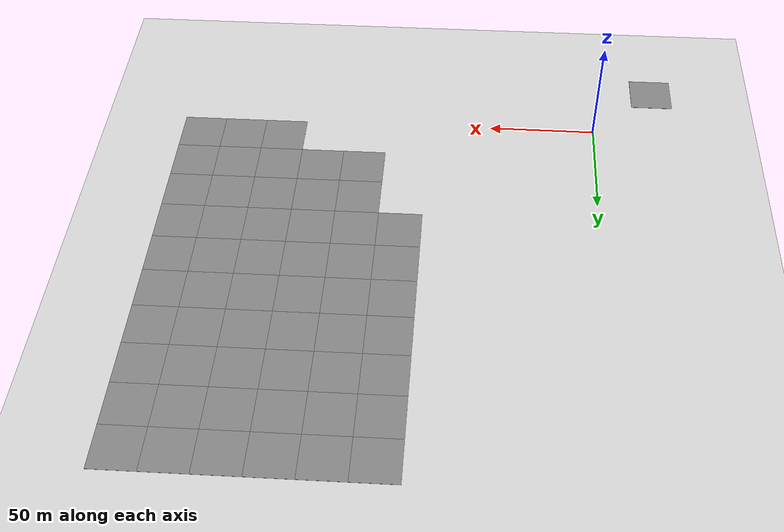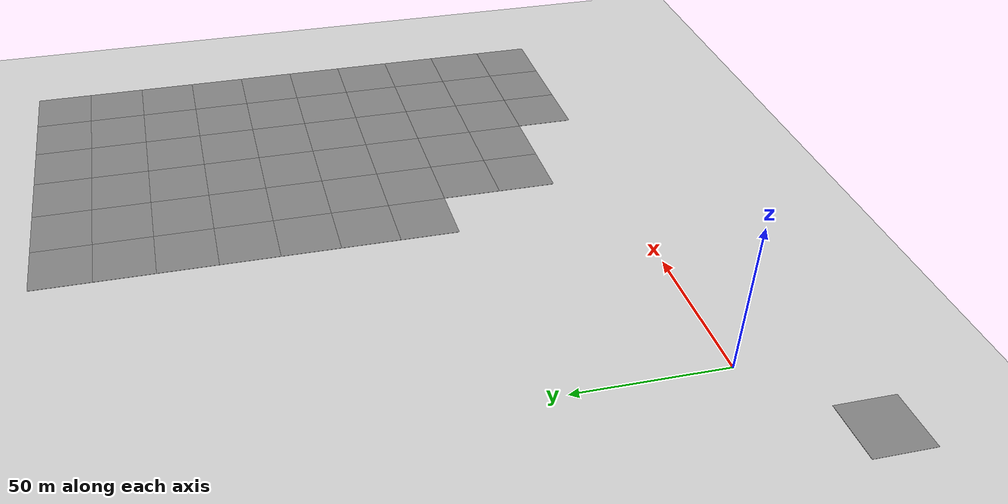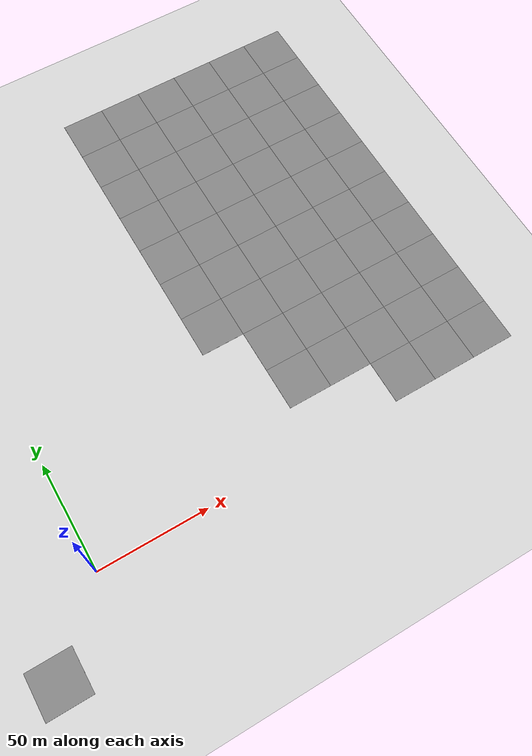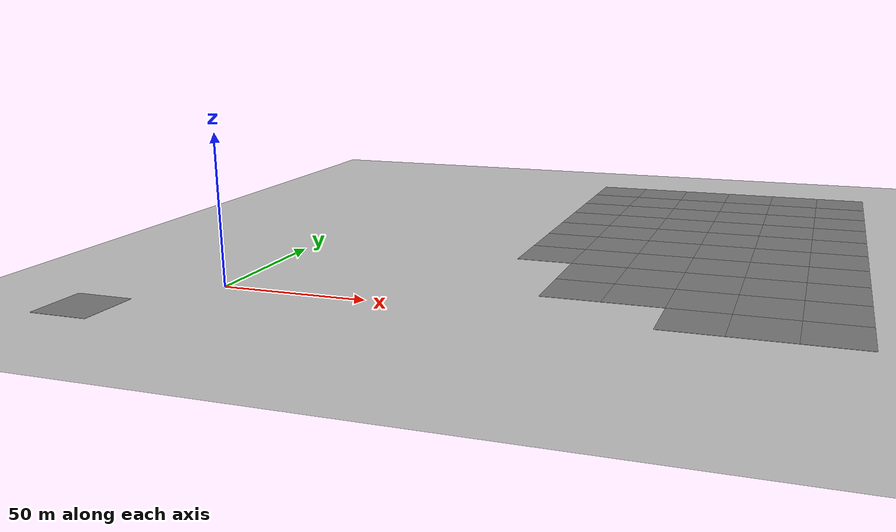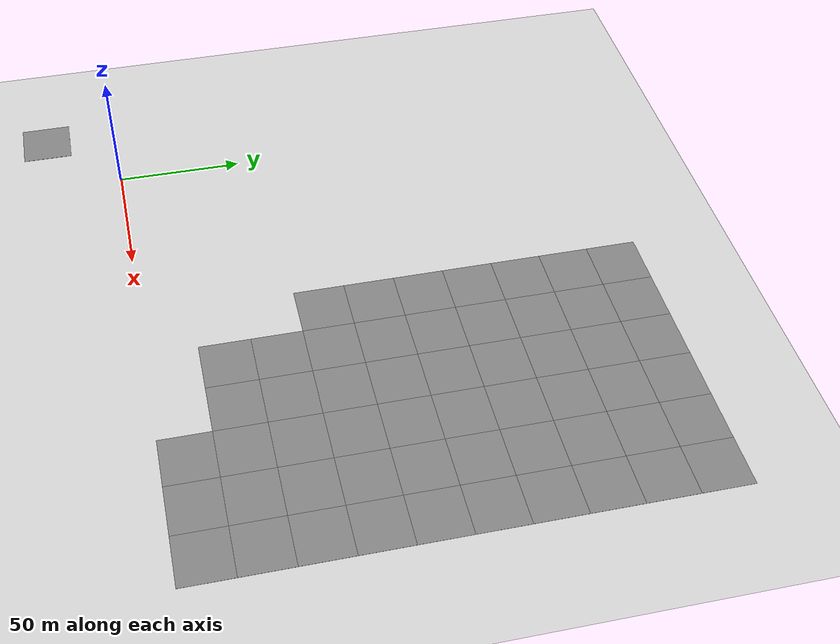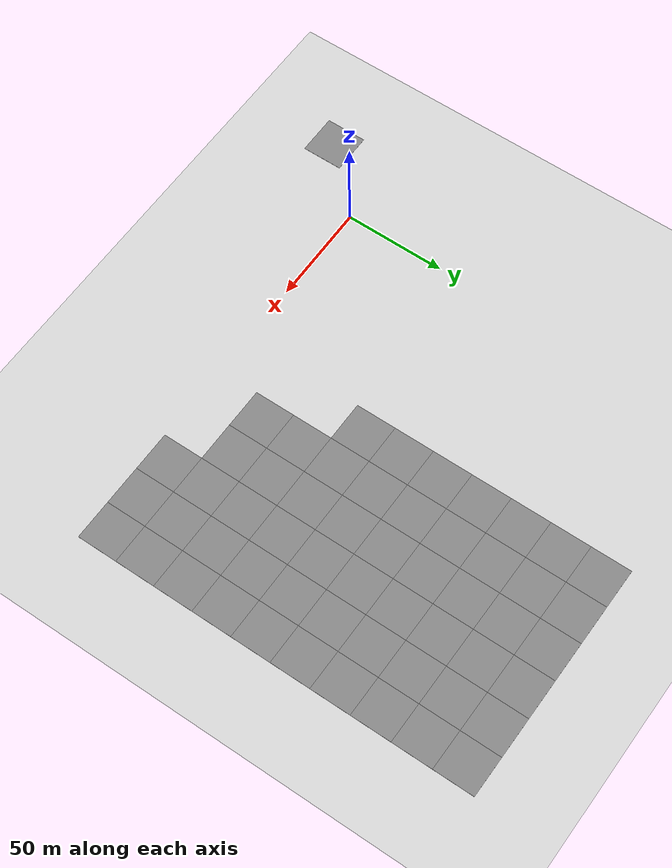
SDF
<sdf version="1.9">
 <world name="test_city_4">
  <model name="ground_plane">
   <static>true</static>
   <link name="link">
    <collision name="collision">
     <geometry><plane><normal>0 0 1</normal><size>500 500</size></plane></geometry>
    </collision>
    <visual name="visual">
     <geometry><plane><normal>0 0 1</normal><size>500 500</size></plane></geometry>
     <material>
      <ambient>0.8 0.8 0.8 1</ambient>
      <diffuse>0.8 0.8 0.8 1</diffuse>
      <specular>0.8 0.8 0.8 1</specular>
     </material>
    </visual>
   </link>
  </model>
  <model name="asphalt_plane">
   <static>1</static>
   <link name="link">
    <collision name="collision"><geometry><box><size>20 20 0.1</size></box></geometry></collision>
    <visual name="visual">
     <cast_shadows>0</cast_shadows>
     <geometry><box><size>20 20 0.1</size></box></geometry>
     <material>
      <ambient>0.5 0.5 0.5 1</ambient>
      <diffuse>0.5 0.5 0.5 1</diffuse>
      <specular>0.2 0.2 0.2 1</specular>
      <pbr><metal><albedo_map>model://asphalt_plane/materials/textures/tarmac.png</albedo_map></metal></pbr>
     </material>
    </visual>
   </link>
   <pose>-30 -30 0 0 0 0</pose>
  </model>
  <model name="asphalt_plane_77">
   <static>1</static>
   <link name="link">
    <collision name="collision"><geometry><box><size>20 20 0.1</size></box></geometry></collision>
    <visual name="visual">
     <cast_shadows>0</cast_shadows>
     <geometry><box><size>20 20 0.1</size></box></geometry>
     <material>
      <ambient>0.5 0.5 0.5 1</ambient>
      <diffuse>0.5 0.5 0.5 1</diffuse>
      <specular>0.2 0.2 0.2 1</specular>
      <pbr><metal><albedo_map>model://asphalt_plane/materials/textures/tarmac.png</albedo_map></metal></pbr>
     </material>
    </visual>
   </link>
   <pose>90 70 0 0 0 0</pose>
  </model>
  <model name="asphalt_plane_78">
   <static>1</static>
   <link name="link">
    <collision name="collision"><geometry><box><size>20 20 0.1</size></box></geometry></collision>
    <visual name="visual">
     <cast_shadows>0</cast_shadows>
     <geometry><box><size>20 20 0.1</size></box></geometry>
     <material>
      <ambient>0.5 0.5 0.5 1</ambient>
      <diffuse>0.5 0.5 0.5 1</diffuse>
      <specular>0.2 0.2 0.2 1</specular>
      <pbr><metal><albedo_map>model://asphalt_plane/materials/textures/tarmac.png</albedo_map></metal></pbr>
     </material>
    </visual>
   </link>
   <pose>90 90 0 0 0 0</pose>
  </model>
  <model name="asphalt_plane_79">
   <static>1</static>
   <link name="link">
    <collision name="collision"><geometry><box><size>20 20 0.1</size></box></geometry></collision>
    <visual name="visual">
     <cast_shadows>0</cast_shadows>
     <geometry><box><size>20 20 0.1</size></box></geometry>
     <material>
      <ambient>0.5 0.5 0.5 1</ambient>
      <diffuse>0.5 0.5 0.5 1</diffuse>
      <specular>0.2 0.2 0.2 1</specular>
      <pbr><metal><albedo_map>model://asphalt_plane/materials/textures/tarmac.png</albedo_map></metal></pbr>
     </material>
    </visual>
   </link>
   <pose>90 110 0 0 0 0</pose>
  </model>
  <model name="asphalt_plane_80">
   <static>1</static>
   <link name="link">
    <collision name="collision"><geometry><box><size>20 20 0.1</size></box></geometry></collision>
    <visual name="visual">
     <cast_shadows>0</cast_shadows>
     <geometry><box><size>20 20 0.1</size></box></geometry>
     <material>
      <ambient>0.5 0.5 0.5 1</ambient>
      <diffuse>0.5 0.5 0.5 1</diffuse>
      <specular>0.2 0.2 0.2 1</specular>
      <pbr><metal><albedo_map>model://asphalt_plane/materials/textures/tarmac.png</albedo_map></metal></pbr>
     </material>
    </visual>
   </link>
   <pose>90 130 0 0 0 0</pose>
  </model>
  <model name="asphalt_plane_81">
   <static>1</static>
   <link name="link">
    <collision name="collision"><geometry><box><size>20 20 0.1</size></box></geometry></collision>
    <visual name="visual">
     <cast_shadows>0</cast_shadows>
     <geometry><box><size>20 20 0.1</size></box></geometry>
     <material>
      <ambient>0.5 0.5 0.5 1</ambient>
      <diffuse>0.5 0.5 0.5 1</diffuse>
      <specular>0.2 0.2 0.2 1</specular>
      <pbr><metal><albedo_map>model://asphalt_plane/materials/textures/tarmac.png</albedo_map></metal></pbr>
     </material>
    </visual>
   </link>
   <pose>90 150 0 0 0 0</pose>
  </model>
  <model name="asphalt_plane_82">
   <static>1</static>
   <link name="link">
    <collision name="collision"><geometry><box><size>20 20 0.1</size></box></geometry></collision>
    <visual name="visual">
     <cast_shadows>0</cast_shadows>
     <geometry><box><size>20 20 0.1</size></box></geometry>
     <material>
      <ambient>0.5 0.5 0.5 1</ambient>
      <diffuse>0.5 0.5 0.5 1</diffuse>
      <specular>0.2 0.2 0.2 1</specular>
      <pbr><metal><albedo_map>model://asphalt_plane/materials/textures/tarmac.png</albedo_map></metal></pbr>
     </material>
    </visual>
   </link>
   <pose>90 170 0 0 0 0</pose>
  </model>
  <model name="asphalt_plane_83">
   <static>1</static>
   <link name="link">
    <collision name="collision"><geometry><box><size>20 20 0.1</size></box></geometry></collision>
    <visual name="visual">
     <cast_shadows>0</cast_shadows>
     <geometry><box><size>20 20 0.1</size></box></geometry>
     <material>
      <ambient>0.5 0.5 0.5 1</ambient>
      <diffuse>0.5 0.5 0.5 1</diffuse>
      <specular>0.2 0.2 0.2 1</specular>
      <pbr><metal><albedo_map>model://asphalt_plane/materials/textures/tarmac.png</albedo_map></metal></pbr>
     </material>
    </visual>
   </link>
   <pose>90 190 0 0 0 0</pose>
  </model>
  <model name="asphalt_plane_87">
   <static>1</static>
   <link name="link">
    <collision name="collision"><geometry><box><size>20 20 0.1</size></box></geometry></collision>
    <visual name="visual">
     <cast_shadows>0</cast_shadows>
     <geometry><box><size>20 20 0.1</size></box></geometry>
     <material>
      <ambient>0.5 0.5 0.5 1</ambient>
      <diffuse>0.5 0.5 0.5 1</diffuse>
      <specular>0.2 0.2 0.2 1</specular>
      <pbr><metal><albedo_map>model://asphalt_plane/materials/textures/tarmac.png</albedo_map></metal></pbr>
     </material>
    </visual>
   </link>
   <pose>110 30 0 0 0 0</pose>
  </model>
  <model name="asphalt_plane_88">
   <static>1</static>
   <link name="link">
    <collision name="collision"><geometry><box><size>20 20 0.1</size></box></geometry></collision>
    <visual name="visual">
     <cast_shadows>0</cast_shadows>
     <geometry><box><size>20 20 0.1</size></box></geometry>
     <material>
      <ambient>0.5 0.5 0.5 1</ambient>
      <diffuse>0.5 0.5 0.5 1</diffuse>
      <specular>0.2 0.2 0.2 1</specular>
      <pbr><metal><albedo_map>model://asphalt_plane/materials/textures/tarmac.png</albedo_map></metal></pbr>
     </material>
    </visual>
   </link>
   <pose>110 50 0 0 0 0</pose>
  </model>
  <model name="asphalt_plane_89">
   <static>1</static>
   <link name="link">
    <collision name="collision"><geometry><box><size>20 20 0.1</size></box></geometry></collision>
    <visual name="visual">
     <cast_shadows>0</cast_shadows>
     <geometry><box><size>20 20 0.1</size></box></geometry>
     <material>
      <ambient>0.5 0.5 0.5 1</ambient>
      <diffuse>0.5 0.5 0.5 1</diffuse>
      <specular>0.2 0.2 0.2 1</specular>
      <pbr><metal><albedo_map>model://asphalt_plane/materials/textures/tarmac.png</albedo_map></metal></pbr>
     </material>
    </visual>
   </link>
   <pose>110 70 0 0 0 0</pose>
  </model>
  <model name="asphalt_plane_90">
   <static>1</static>
   <link name="link">
    <collision name="collision"><geometry><box><size>20 20 0.1</size></box></geometry></collision>
    <visual name="visual">
     <cast_shadows>0</cast_shadows>
     <geometry><box><size>20 20 0.1</size></box></geometry>
     <material>
      <ambient>0.5 0.5 0.5 1</ambient>
      <diffuse>0.5 0.5 0.5 1</diffuse>
      <specular>0.2 0.2 0.2 1</specular>
      <pbr><metal><albedo_map>model://asphalt_plane/materials/textures/tarmac.png</albedo_map></metal></pbr>
     </material>
    </visual>
   </link>
   <pose>110 90 0 0 0 0</pose>
  </model>
  <model name="asphalt_plane_91">
   <static>1</static>
   <link name="link">
    <collision name="collision"><geometry><box><size>20 20 0.1</size></box></geometry></collision>
    <visual name="visual">
     <cast_shadows>0</cast_shadows>
     <geometry><box><size>20 20 0.1</size></box></geometry>
     <material>
      <ambient>0.5 0.5 0.5 1</ambient>
      <diffuse>0.5 0.5 0.5 1</diffuse>
      <specular>0.2 0.2 0.2 1</specular>
      <pbr><metal><albedo_map>model://asphalt_plane/materials/textures/tarmac.png</albedo_map></metal></pbr>
     </material>
    </visual>
   </link>
   <pose>110 110 0 0 0 0</pose>
  </model>
  <model name="asphalt_plane_92">
   <static>1</static>
   <link name="link">
    <collision name="collision"><geometry><box><size>20 20 0.1</size></box></geometry></collision>
    <visual name="visual">
     <cast_shadows>0</cast_shadows>
     <geometry><box><size>20 20 0.1</size></box></geometry>
     <material>
      <ambient>0.5 0.5 0.5 1</ambient>
      <diffuse>0.5 0.5 0.5 1</diffuse>
      <specular>0.2 0.2 0.2 1</specular>
      <pbr><metal><albedo_map>model://asphalt_plane/materials/textures/tarmac.png</albedo_map></metal></pbr>
     </material>
    </visual>
   </link>
   <pose>110 130 0 0 0 0</pose>
  </model>
  <model name="asphalt_plane_93">
   <static>1</static>
   <link name="link">
    <collision name="collision"><geometry><box><size>20 20 0.1</size></box></geometry></collision>
    <visual name="visual">
     <cast_shadows>0</cast_shadows>
     <geometry><box><size>20 20 0.1</size></box></geometry>
     <material>
      <ambient>0.5 0.5 0.5 1</ambient>
      <diffuse>0.5 0.5 0.5 1</diffuse>
      <specular>0.2 0.2 0.2 1</specular>
      <pbr><metal><albedo_map>model://asphalt_plane/materials/textures/tarmac.png</albedo_map></metal></pbr>
     </material>
    </visual>
   </link>
   <pose>110 150 0 0 0 0</pose>
  </model>
  <model name="asphalt_plane_94">
   <static>1</static>
   <link name="link">
    <collision name="collision"><geometry><box><size>20 20 0.1</size></box></geometry></collision>
    <visual name="visual">
     <cast_shadows>0</cast_shadows>
     <geometry><box><size>20 20 0.1</size></box></geometry>
     <material>
      <ambient>0.5 0.5 0.5 1</ambient>
      <diffuse>0.5 0.5 0.5 1</diffuse>
      <specular>0.2 0.2 0.2 1</specular>
      <pbr><metal><albedo_map>model://asphalt_plane/materials/textures/tarmac.png</albedo_map></metal></pbr>
     </material>
    </visual>
   </link>
   <pose>110 170 0 0 0 0</pose>
  </model>
  <model name="asphalt_plane_95">
   <static>1</static>
   <link name="link">
    <collision name="collision"><geometry><box><size>20 20 0.1</size></box></geometry></collision>
    <visual name="visual">
     <cast_shadows>0</cast_shadows>
     <geometry><box><size>20 20 0.1</size></box></geometry>
     <material>
      <ambient>0.5 0.5 0.5 1</ambient>
      <diffuse>0.5 0.5 0.5 1</diffuse>
      <specular>0.2 0.2 0.2 1</specular>
      <pbr><metal><albedo_map>model://asphalt_plane/materials/textures/tarmac.png</albedo_map></metal></pbr>
     </material>
    </visual>
   </link>
   <pose>110 190 0 0 0 0</pose>
  </model>
  <model name="asphalt_plane_99">
   <static>1</static>
   <link name="link">
    <collision name="collision"><geometry><box><size>20 20 0.1</size></box></geometry></collision>
    <visual name="visual">
     <cast_shadows>0</cast_shadows>
     <geometry><box><size>20 20 0.1</size></box></geometry>
     <material>
      <ambient>0.5 0.5 0.5 1</ambient>
      <diffuse>0.5 0.5 0.5 1</diffuse>
      <specular>0.2 0.2 0.2 1</specular>
      <pbr><metal><albedo_map>model://asphalt_plane/materials/textures/tarmac.png</albedo_map></metal></pbr>
     </material>
    </visual>
   </link>
   <pose>130 30 0 0 0 0</pose>
  </model>
  <model name="asphalt_plane_100">
   <static>1</static>
   <link name="link">
    <collision name="collision"><geometry><box><size>20 20 0.1</size></box></geometry></collision>
    <visual name="visual">
     <cast_shadows>0</cast_shadows>
     <geometry><box><size>20 20 0.1</size></box></geometry>
     <material>
      <ambient>0.5 0.5 0.5 1</ambient>
      <diffuse>0.5 0.5 0.5 1</diffuse>
      <specular>0.2 0.2 0.2 1</specular>
      <pbr><metal><albedo_map>model://asphalt_plane/materials/textures/tarmac.png</albedo_map></metal></pbr>
     </material>
    </visual>
   </link>
   <pose>130 50 0 0 0 0</pose>
  </model>
  <model name="asphalt_plane_101">
   <static>1</static>
   <link name="link">
    <collision name="collision"><geometry><box><size>20 20 0.1</size></box></geometry></collision>
    <visual name="visual">
     <cast_shadows>0</cast_shadows>
     <geometry><box><size>20 20 0.1</size></box></geometry>
     <material>
      <ambient>0.5 0.5 0.5 1</ambient>
      <diffuse>0.5 0.5 0.5 1</diffuse>
      <specular>0.2 0.2 0.2 1</specular>
      <pbr><metal><albedo_map>model://asphalt_plane/materials/textures/tarmac.png</albedo_map></metal></pbr>
     </material>
    </visual>
   </link>
   <pose>130 70 0 0 0 0</pose>
  </model>
  <model name="asphalt_plane_102">
   <static>1</static>
   <link name="link">
    <collision name="collision"><geometry><box><size>20 20 0.1</size></box></geometry></collision>
    <visual name="visual">
     <cast_shadows>0</cast_shadows>
     <geometry><box><size>20 20 0.1</size></box></geometry>
     <material>
      <ambient>0.5 0.5 0.5 1</ambient>
      <diffuse>0.5 0.5 0.5 1</diffuse>
      <specular>0.2 0.2 0.2 1</specular>
      <pbr><metal><albedo_map>model://asphalt_plane/materials/textures/tarmac.png</albedo_map></metal></pbr>
     </material>
    </visual>
   </link>
   <pose>130 90 0 0 0 0</pose>
  </model>
  <model name="asphalt_plane_103">
   <static>1</static>
   <link name="link">
    <collision name="collision"><geometry><box><size>20 20 0.1</size></box></geometry></collision>
    <visual name="visual">
     <cast_shadows>0</cast_shadows>
     <geometry><box><size>20 20 0.1</size></box></geometry>
     <material>
      <ambient>0.5 0.5 0.5 1</ambient>
      <diffuse>0.5 0.5 0.5 1</diffuse>
      <specular>0.2 0.2 0.2 1</specular>
      <pbr><metal><albedo_map>model://asphalt_plane/materials/textures/tarmac.png</albedo_map></metal></pbr>
     </material>
    </visual>
   </link>
   <pose>130 110 0 0 0 0</pose>
  </model>
  <model name="asphalt_plane_104">
   <static>1</static>
   <link name="link">
    <collision name="collision"><geometry><box><size>20 20 0.1</size></box></geometry></collision>
    <visual name="visual">
     <cast_shadows>0</cast_shadows>
     <geometry><box><size>20 20 0.1</size></box></geometry>
     <material>
      <ambient>0.5 0.5 0.5 1</ambient>
      <diffuse>0.5 0.5 0.5 1</diffuse>
      <specular>0.2 0.2 0.2 1</specular>
      <pbr><metal><albedo_map>model://asphalt_plane/materials/textures/tarmac.png</albedo_map></metal></pbr>
     </material>
    </visual>
   </link>
   <pose>130 130 0 0 0 0</pose>
  </model>
  <model name="asphalt_plane_105">
   <static>1</static>
   <link name="link">
    <collision name="collision"><geometry><box><size>20 20 0.1</size></box></geometry></collision>
    <visual name="visual">
     <cast_shadows>0</cast_shadows>
     <geometry><box><size>20 20 0.1</size></box></geometry>
     <material>
      <ambient>0.5 0.5 0.5 1</ambient>
      <diffuse>0.5 0.5 0.5 1</diffuse>
      <specular>0.2 0.2 0.2 1</specular>
      <pbr><metal><albedo_map>model://asphalt_plane/materials/textures/tarmac.png</albedo_map></metal></pbr>
     </material>
    </visual>
   </link>
   <pose>130 150 0 0 0 0</pose>
  </model>
  <model name="asphalt_plane_106">
   <static>1</static>
   <link name="link">
    <collision name="collision"><geometry><box><size>20 20 0.1</size></box></geometry></collision>
    <visual name="visual">
     <cast_shadows>0</cast_shadows>
     <geometry><box><size>20 20 0.1</size></box></geometry>
     <material>
      <ambient>0.5 0.5 0.5 1</ambient>
      <diffuse>0.5 0.5 0.5 1</diffuse>
      <specular>0.2 0.2 0.2 1</specular>
      <pbr><metal><albedo_map>model://asphalt_plane/materials/textures/tarmac.png</albedo_map></metal></pbr>
     </material>
    </visual>
   </link>
   <pose>130 170 0 0 0 0</pose>
  </model>
  <model name="asphalt_plane_107">
   <static>1</static>
   <link name="link">
    <collision name="collision"><geometry><box><size>20 20 0.1</size></box></geometry></collision>
    <visual name="visual">
     <cast_shadows>0</cast_shadows>
     <geometry><box><size>20 20 0.1</size></box></geometry>
     <material>
      <ambient>0.5 0.5 0.5 1</ambient>
      <diffuse>0.5 0.5 0.5 1</diffuse>
      <specular>0.2 0.2 0.2 1</specular>
      <pbr><metal><albedo_map>model://asphalt_plane/materials/textures/tarmac.png</albedo_map></metal></pbr>
     </material>
    </visual>
   </link>
   <pose>130 190 0 0 0 0</pose>
  </model>
  <model name="asphalt_plane_110">
   <static>1</static>
   <link name="link">
    <collision name="collision"><geometry><box><size>20 20 0.1</size></box></geometry></collision>
    <visual name="visual">
     <cast_shadows>0</cast_shadows>
     <geometry><box><size>20 20 0.1</size></box></geometry>
     <material>
      <ambient>0.5 0.5 0.5 1</ambient>
      <diffuse>0.5 0.5 0.5 1</diffuse>
      <specular>0.2 0.2 0.2 1</specular>
      <pbr><metal><albedo_map>model://asphalt_plane/materials/textures/tarmac.png</albedo_map></metal></pbr>
     </material>
    </visual>
   </link>
   <pose>150 10 0 0 0 0</pose>
  </model>
  <model name="asphalt_plane_111">
   <static>1</static>
   <link name="link">
    <collision name="collision"><geometry><box><size>20 20 0.1</size></box></geometry></collision>
    <visual name="visual">
     <cast_shadows>0</cast_shadows>
     <geometry><box><size>20 20 0.1</size></box></geometry>
     <material>
      <ambient>0.5 0.5 0.5 1</ambient>
      <diffuse>0.5 0.5 0.5 1</diffuse>
      <specular>0.2 0.2 0.2 1</specular>
      <pbr><metal><albedo_map>model://asphalt_plane/materials/textures/tarmac.png</albedo_map></metal></pbr>
     </material>
    </visual>
   </link>
   <pose>150 30 0 0 0 0</pose>
  </model>
  <model name="asphalt_plane_112">
   <static>1</static>
   <link name="link">
    <collision name="collision"><geometry><box><size>20 20 0.1</size></box></geometry></collision>
    <visual name="visual">
     <cast_shadows>0</cast_shadows>
     <geometry><box><size>20 20 0.1</size></box></geometry>
     <material>
      <ambient>0.5 0.5 0.5 1</ambient>
      <diffuse>0.5 0.5 0.5 1</diffuse>
      <specular>0.2 0.2 0.2 1</specular>
      <pbr><metal><albedo_map>model://asphalt_plane/materials/textures/tarmac.png</albedo_map></metal></pbr>
     </material>
    </visual>
   </link>
   <pose>150 50 0 0 0 0</pose>
  </model>
  <model name="asphalt_plane_113">
   <static>1</static>
   <link name="link">
    <collision name="collision"><geometry><box><size>20 20 0.1</size></box></geometry></collision>
    <visual name="visual">
     <cast_shadows>0</cast_shadows>
     <geometry><box><size>20 20 0.1</size></box></geometry>
     <material>
      <ambient>0.5 0.5 0.5 1</ambient>
      <diffuse>0.5 0.5 0.5 1</diffuse>
      <specular>0.2 0.2 0.2 1</specular>
      <pbr><metal><albedo_map>model://asphalt_plane/materials/textures/tarmac.png</albedo_map></metal></pbr>
     </material>
    </visual>
   </link>
   <pose>150 70 0 0 0 0</pose>
  </model>
  <model name="asphalt_plane_114">
   <static>1</static>
   <link name="link">
    <collision name="collision"><geometry><box><size>20 20 0.1</size></box></geometry></collision>
    <visual name="visual">
     <cast_shadows>0</cast_shadows>
     <geometry><box><size>20 20 0.1</size></box></geometry>
     <material>
      <ambient>0.5 0.5 0.5 1</ambient>
      <diffuse>0.5 0.5 0.5 1</diffuse>
      <specular>0.2 0.2 0.2 1</specular>
      <pbr><metal><albedo_map>model://asphalt_plane/materials/textures/tarmac.png</albedo_map></metal></pbr>
     </material>
    </visual>
   </link>
   <pose>150 90 0 0 0 0</pose>
  </model>
  <model name="asphalt_plane_115">
   <static>1</static>
   <link name="link">
    <collision name="collision"><geometry><box><size>20 20 0.1</size></box></geometry></collision>
    <visual name="visual">
     <cast_shadows>0</cast_shadows>
     <geometry><box><size>20 20 0.1</size></box></geometry>
     <material>
      <ambient>0.5 0.5 0.5 1</ambient>
      <diffuse>0.5 0.5 0.5 1</diffuse>
      <specular>0.2 0.2 0.2 1</specular>
      <pbr><metal><albedo_map>model://asphalt_plane/materials/textures/tarmac.png</albedo_map></metal></pbr>
     </material>
    </visual>
   </link>
   <pose>150 110 0 0 0 0</pose>
  </model>
  <model name="asphalt_plane_116">
   <static>1</static>
   <link name="link">
    <collision name="collision"><geometry><box><size>20 20 0.1</size></box></geometry></collision>
    <visual name="visual">
     <cast_shadows>0</cast_shadows>
     <geometry><box><size>20 20 0.1</size></box></geometry>
     <material>
      <ambient>0.5 0.5 0.5 1</ambient>
      <diffuse>0.5 0.5 0.5 1</diffuse>
      <specular>0.2 0.2 0.2 1</specular>
      <pbr><metal><albedo_map>model://asphalt_plane/materials/textures/tarmac.png</albedo_map></metal></pbr>
     </material>
    </visual>
   </link>
   <pose>150 130 0 0 0 0</pose>
  </model>
  <model name="asphalt_plane_117">
   <static>1</static>
   <link name="link">
    <collision name="collision"><geometry><box><size>20 20 0.1</size></box></geometry></collision>
    <visual name="visual">
     <cast_shadows>0</cast_shadows>
     <geometry><box><size>20 20 0.1</size></box></geometry>
     <material>
      <ambient>0.5 0.5 0.5 1</ambient>
      <diffuse>0.5 0.5 0.5 1</diffuse>
      <specular>0.2 0.2 0.2 1</specular>
      <pbr><metal><albedo_map>model://asphalt_plane/materials/textures/tarmac.png</albedo_map></metal></pbr>
     </material>
    </visual>
   </link>
   <pose>150 150 0 0 0 0</pose>
  </model>
  <model name="asphalt_plane_118">
   <static>1</static>
   <link name="link">
    <collision name="collision"><geometry><box><size>20 20 0.1</size></box></geometry></collision>
    <visual name="visual">
     <cast_shadows>0</cast_shadows>
     <geometry><box><size>20 20 0.1</size></box></geometry>
     <material>
      <ambient>0.5 0.5 0.5 1</ambient>
      <diffuse>0.5 0.5 0.5 1</diffuse>
      <specular>0.2 0.2 0.2 1</specular>
      <pbr><metal><albedo_map>model://asphalt_plane/materials/textures/tarmac.png</albedo_map></metal></pbr>
     </material>
    </visual>
   </link>
   <pose>150 170 0 0 0 0</pose>
  </model>
  <model name="asphalt_plane_119">
   <static>1</static>
   <link name="link">
    <collision name="collision"><geometry><box><size>20 20 0.1</size></box></geometry></collision>
    <visual name="visual">
     <cast_shadows>0</cast_shadows>
     <geometry><box><size>20 20 0.1</size></box></geometry>
     <material>
      <ambient>0.5 0.5 0.5 1</ambient>
      <diffuse>0.5 0.5 0.5 1</diffuse>
      <specular>0.2 0.2 0.2 1</specular>
      <pbr><metal><albedo_map>model://asphalt_plane/materials/textures/tarmac.png</albedo_map></metal></pbr>
     </material>
    </visual>
   </link>
   <pose>150 190 0 0 0 0</pose>
  </model>
  <model name="asphalt_plane_122">
   <static>1</static>
   <link name="link">
    <collision name="collision"><geometry><box><size>20 20 0.1</size></box></geometry></collision>
    <visual name="visual">
     <cast_shadows>0</cast_shadows>
     <geometry><box><size>20 20 0.1</size></box></geometry>
     <material>
      <ambient>0.5 0.5 0.5 1</ambient>
      <diffuse>0.5 0.5 0.5 1</diffuse>
      <specular>0.2 0.2 0.2 1</specular>
      <pbr><metal><albedo_map>model://asphalt_plane/materials/textures/tarmac.png</albedo_map></metal></pbr>
     </material>
    </visual>
   </link>
   <pose>170 10 0 0 0 0</pose>
  </model>
  <model name="asphalt_plane_123">
   <static>1</static>
   <link name="link">
    <collision name="collision"><geometry><box><size>20 20 0.1</size></box></geometry></collision>
    <visual name="visual">
     <cast_shadows>0</cast_shadows>
     <geometry><box><size>20 20 0.1</size></box></geometry>
     <material>
      <ambient>0.5 0.5 0.5 1</ambient>
      <diffuse>0.5 0.5 0.5 1</diffuse>
      <specular>0.2 0.2 0.2 1</specular>
      <pbr><metal><albedo_map>model://asphalt_plane/materials/textures/tarmac.png</albedo_map></metal></pbr>
     </material>
    </visual>
   </link>
   <pose>170 30 0 0 0 0</pose>
  </model>
  <model name="asphalt_plane_124">
   <static>1</static>
   <link name="link">
    <collision name="collision"><geometry><box><size>20 20 0.1</size></box></geometry></collision>
    <visual name="visual">
     <cast_shadows>0</cast_shadows>
     <geometry><box><size>20 20 0.1</size></box></geometry>
     <material>
      <ambient>0.5 0.5 0.5 1</ambient>
      <diffuse>0.5 0.5 0.5 1</diffuse>
      <specular>0.2 0.2 0.2 1</specular>
      <pbr><metal><albedo_map>model://asphalt_plane/materials/textures/tarmac.png</albedo_map></metal></pbr>
     </material>
    </visual>
   </link>
   <pose>170 50 0 0 0 0</pose>
  </model>
  <model name="asphalt_plane_125">
   <static>1</static>
   <link name="link">
    <collision name="collision"><geometry><box><size>20 20 0.1</size></box></geometry></collision>
    <visual name="visual">
     <cast_shadows>0</cast_shadows>
     <geometry><box><size>20 20 0.1</size></box></geometry>
     <material>
      <ambient>0.5 0.5 0.5 1</ambient>
      <diffuse>0.5 0.5 0.5 1</diffuse>
      <specular>0.2 0.2 0.2 1</specular>
      <pbr><metal><albedo_map>model://asphalt_plane/materials/textures/tarmac.png</albedo_map></metal></pbr>
     </material>
    </visual>
   </link>
   <pose>170 70 0 0 0 0</pose>
  </model>
  <model name="asphalt_plane_126">
   <static>1</static>
   <link name="link">
    <collision name="collision"><geometry><box><size>20 20 0.1</size></box></geometry></collision>
    <visual name="visual">
     <cast_shadows>0</cast_shadows>
     <geometry><box><size>20 20 0.1</size></box></geometry>
     <material>
      <ambient>0.5 0.5 0.5 1</ambient>
      <diffuse>0.5 0.5 0.5 1</diffuse>
      <specular>0.2 0.2 0.2 1</specular>
      <pbr><metal><albedo_map>model://asphalt_plane/materials/textures/tarmac.png</albedo_map></metal></pbr>
     </material>
    </visual>
   </link>
   <pose>170 90 0 0 0 0</pose>
  </model>
  <model name="asphalt_plane_127">
   <static>1</static>
   <link name="link">
    <collision name="collision"><geometry><box><size>20 20 0.1</size></box></geometry></collision>
    <visual name="visual">
     <cast_shadows>0</cast_shadows>
     <geometry><box><size>20 20 0.1</size></box></geometry>
     <material>
      <ambient>0.5 0.5 0.5 1</ambient>
      <diffuse>0.5 0.5 0.5 1</diffuse>
      <specular>0.2 0.2 0.2 1</specular>
      <pbr><metal><albedo_map>model://asphalt_plane/materials/textures/tarmac.png</albedo_map></metal></pbr>
     </material>
    </visual>
   </link>
   <pose>170 110 0 0 0 0</pose>
  </model>
  <model name="asphalt_plane_128">
   <static>1</static>
   <link name="link">
    <collision name="collision"><geometry><box><size>20 20 0.1</size></box></geometry></collision>
    <visual name="visual">
     <cast_shadows>0</cast_shadows>
     <geometry><box><size>20 20 0.1</size></box></geometry>
     <material>
      <ambient>0.5 0.5 0.5 1</ambient>
      <diffuse>0.5 0.5 0.5 1</diffuse>
      <specular>0.2 0.2 0.2 1</specular>
      <pbr><metal><albedo_map>model://asphalt_plane/materials/textures/tarmac.png</albedo_map></metal></pbr>
     </material>
    </visual>
   </link>
   <pose>170 130 0 0 0 0</pose>
  </model>
  <model name="asphalt_plane_129">
   <static>1</static>
   <link name="link">
    <collision name="collision"><geometry><box><size>20 20 0.1</size></box></geometry></collision>
    <visual name="visual">
     <cast_shadows>0</cast_shadows>
     <geometry><box><size>20 20 0.1</size></box></geometry>
     <material>
      <ambient>0.5 0.5 0.5 1</ambient>
      <diffuse>0.5 0.5 0.5 1</diffuse>
      <specular>0.2 0.2 0.2 1</specular>
      <pbr><metal><albedo_map>model://asphalt_plane/materials/textures/tarmac.png</albedo_map></metal></pbr>
     </material>
    </visual>
   </link>
   <pose>170 150 0 0 0 0</pose>
  </model>
  <model name="asphalt_plane_130">
   <static>1</static>
   <link name="link">
    <collision name="collision"><geometry><box><size>20 20 0.1</size></box></geometry></collision>
    <visual name="visual">
     <cast_shadows>0</cast_shadows>
     <geometry><box><size>20 20 0.1</size></box></geometry>
     <material>
      <ambient>0.5 0.5 0.5 1</ambient>
      <diffuse>0.5 0.5 0.5 1</diffuse>
      <specular>0.2 0.2 0.2 1</specular>
      <pbr><metal><albedo_map>model://asphalt_plane/materials/textures/tarmac.png</albedo_map></metal></pbr>
     </material>
    </visual>
   </link>
   <pose>170 170 0 0 0 0</pose>
  </model>
  <model name="asphalt_plane_131">
   <static>1</static>
   <link name="link">
    <collision name="collision"><geometry><box><size>20 20 0.1</size></box></geometry></collision>
    <visual name="visual">
     <cast_shadows>0</cast_shadows>
     <geometry><box><size>20 20 0.1</size></box></geometry>
     <material>
      <ambient>0.5 0.5 0.5 1</ambient>
      <diffuse>0.5 0.5 0.5 1</diffuse>
      <specular>0.2 0.2 0.2 1</specular>
      <pbr><metal><albedo_map>model://asphalt_plane/materials/textures/tarmac.png</albedo_map></metal></pbr>
     </material>
    </visual>
   </link>
   <pose>170 190 0 0 0 0</pose>
  </model>
  <model name="asphalt_plane_134">
   <static>1</static>
   <link name="link">
    <collision name="collision"><geometry><box><size>20 20 0.1</size></box></geometry></collision>
    <visual name="visual">
     <cast_shadows>0</cast_shadows>
     <geometry><box><size>20 20 0.1</size></box></geometry>
     <material>
      <ambient>0.5 0.5 0.5 1</ambient>
      <diffuse>0.5 0.5 0.5 1</diffuse>
      <specular>0.2 0.2 0.2 1</specular>
      <pbr><metal><albedo_map>model://asphalt_plane/materials/textures/tarmac.png</albedo_map></metal></pbr>
     </material>
    </visual>
   </link>
   <pose>190 10 0 0 0 0</pose>
  </model>
  <model name="asphalt_plane_135">
   <static>1</static>
   <link name="link">
    <collision name="collision"><geometry><box><size>20 20 0.1</size></box></geometry></collision>
    <visual name="visual">
     <cast_shadows>0</cast_shadows>
     <geometry><box><size>20 20 0.1</size></box></geometry>
     <material>
      <ambient>0.5 0.5 0.5 1</ambient>
      <diffuse>0.5 0.5 0.5 1</diffuse>
      <specular>0.2 0.2 0.2 1</specular>
      <pbr><metal><albedo_map>model://asphalt_plane/materials/textures/tarmac.png</albedo_map></metal></pbr>
     </material>
    </visual>
   </link>
   <pose>190 30 0 0 0 0</pose>
  </model>
  <model name="asphalt_plane_136">
   <static>1</static>
   <link name="link">
    <collision name="collision"><geometry><box><size>20 20 0.1</size></box></geometry></collision>
    <visual name="visual">
     <cast_shadows>0</cast_shadows>
     <geometry><box><size>20 20 0.1</size></box></geometry>
     <material>
      <ambient>0.5 0.5 0.5 1</ambient>
      <diffuse>0.5 0.5 0.5 1</diffuse>
      <specular>0.2 0.2 0.2 1</specular>
      <pbr><metal><albedo_map>model://asphalt_plane/materials/textures/tarmac.png</albedo_map></metal></pbr>
     </material>
    </visual>
   </link>
   <pose>190 50 0 0 0 0</pose>
  </model>
  <model name="asphalt_plane_137">
   <static>1</static>
   <link name="link">
    <collision name="collision"><geometry><box><size>20 20 0.1</size></box></geometry></collision>
    <visual name="visual">
     <cast_shadows>0</cast_shadows>
     <geometry><box><size>20 20 0.1</size></box></geometry>
     <material>
      <ambient>0.5 0.5 0.5 1</ambient>
      <diffuse>0.5 0.5 0.5 1</diffuse>
      <specular>0.2 0.2 0.2 1</specular>
      <pbr><metal><albedo_map>model://asphalt_plane/materials/textures/tarmac.png</albedo_map></metal></pbr>
     </material>
    </visual>
   </link>
   <pose>190 70 0 0 0 0</pose>
  </model>
  <model name="asphalt_plane_138">
   <static>1</static>
   <link name="link">
    <collision name="collision"><geometry><box><size>20 20 0.1</size></box></geometry></collision>
    <visual name="visual">
     <cast_shadows>0</cast_shadows>
     <geometry><box><size>20 20 0.1</size></box></geometry>
     <material>
      <ambient>0.5 0.5 0.5 1</ambient>
      <diffuse>0.5 0.5 0.5 1</diffuse>
      <specular>0.2 0.2 0.2 1</specular>
      <pbr><metal><albedo_map>model://asphalt_plane/materials/textures/tarmac.png</albedo_map></metal></pbr>
     </material>
    </visual>
   </link>
   <pose>190 90 0 0 0 0</pose>
  </model>
  <model name="asphalt_plane_139">
   <static>1</static>
   <link name="link">
    <collision name="collision"><geometry><box><size>20 20 0.1</size></box></geometry></collision>
    <visual name="visual">
     <cast_shadows>0</cast_shadows>
     <geometry><box><size>20 20 0.1</size></box></geometry>
     <material>
      <ambient>0.5 0.5 0.5 1</ambient>
      <diffuse>0.5 0.5 0.5 1</diffuse>
      <specular>0.2 0.2 0.2 1</specular>
      <pbr><metal><albedo_map>model://asphalt_plane/materials/textures/tarmac.png</albedo_map></metal></pbr>
     </material>
    </visual>
   </link>
   <pose>190 110 0 0 0 0</pose>
  </model>
  <model name="asphalt_plane_140">
   <static>1</static>
   <link name="link">
    <collision name="collision"><geometry><box><size>20 20 0.1</size></box></geometry></collision>
    <visual name="visual">
     <cast_shadows>0</cast_shadows>
     <geometry><box><size>20 20 0.1</size></box></geometry>
     <material>
      <ambient>0.5 0.5 0.5 1</ambient>
      <diffuse>0.5 0.5 0.5 1</diffuse>
      <specular>0.2 0.2 0.2 1</specular>
      <pbr><metal><albedo_map>model://asphalt_plane/materials/textures/tarmac.png</albedo_map></metal></pbr>
     </material>
    </visual>
   </link>
   <pose>190 130 0 0 0 0</pose>
  </model>
  <model name="asphalt_plane_141">
   <static>1</static>
   <link name="link">
    <collision name="collision"><geometry><box><size>20 20 0.1</size></box></geometry></collision>
    <visual name="visual">
     <cast_shadows>0</cast_shadows>
     <geometry><box><size>20 20 0.1</size></box></geometry>
     <material>
      <ambient>0.5 0.5 0.5 1</ambient>
      <diffuse>0.5 0.5 0.5 1</diffuse>
      <specular>0.2 0.2 0.2 1</specular>
      <pbr><metal><albedo_map>model://asphalt_plane/materials/textures/tarmac.png</albedo_map></metal></pbr>
     </material>
    </visual>
   </link>
   <pose>190 150 0 0 0 0</pose>
  </model>
  <model name="asphalt_plane_142">
   <static>1</static>
   <link name="link">
    <collision name="collision"><geometry><box><size>20 20 0.1</size></box></geometry></collision>
    <visual name="visual">
     <cast_shadows>0</cast_shadows>
     <geometry><box><size>20 20 0.1</size></box></geometry>
     <material>
      <ambient>0.5 0.5 0.5 1</ambient>
      <diffuse>0.5 0.5 0.5 1</diffuse>
      <specular>0.2 0.2 0.2 1</specular>
      <pbr><metal><albedo_map>model://asphalt_plane/materials/textures/tarmac.png</albedo_map></metal></pbr>
     </material>
    </visual>
   </link>
   <pose>190 170 0 0 0 0</pose>
  </model>
  <model name="asphalt_plane_143">
   <static>1</static>
   <link name="link">
    <collision name="collision"><geometry><box><size>20 20 0.1</size></box></geometry></collision>
    <visual name="visual">
     <cast_shadows>0</cast_shadows>
     <geometry><box><size>20 20 0.1</size></box></geometry>
     <material>
      <ambient>0.5 0.5 0.5 1</ambient>
      <diffuse>0.5 0.5 0.5 1</diffuse>
      <specular>0.2 0.2 0.2 1</specular>
      <pbr><metal><albedo_map>model://asphalt_plane/materials/textures/tarmac.png</albedo_map></metal></pbr>
     </material>
    </visual>
   </link>
   <pose>190 190 0 0 0 0</pose>
  </model>
 </world>
</sdf>
